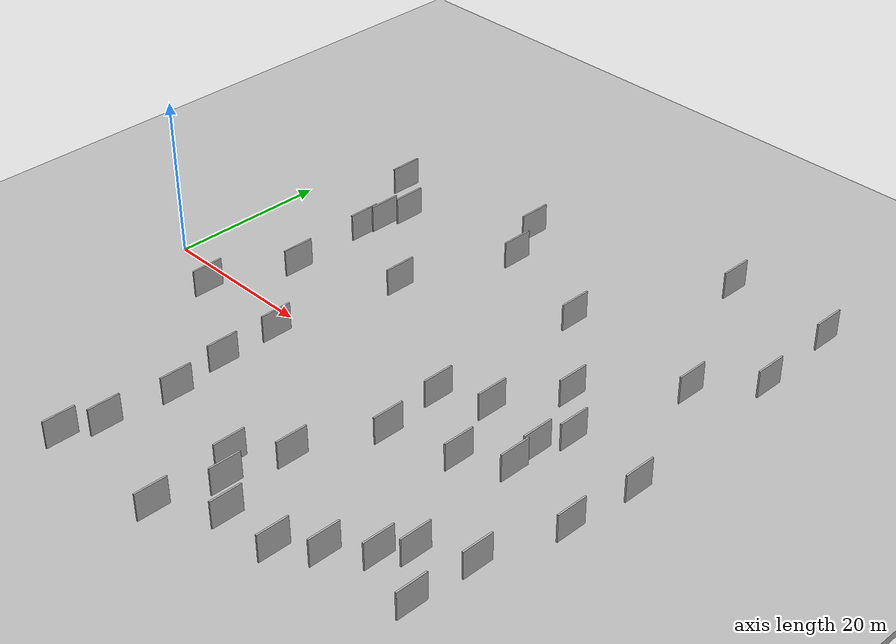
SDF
<?xml version="1.0" encoding="utf-8"?>

<sdf version="1.6">

   <world name="default">

      <gui fullscreen="0">

         <camera name="user_camera">

            <pose>-15 0 4.57585 0 0 0</pose>

            <view_controller>orbit</view_controller>

         </camera>

      </gui>

      <scene>

         <sky>

           <clouds>

             <speed>12</speed>

           </clouds>

         </sky>

         <ambient>0.4 0.4 0.4 1</ambient>

         <background>0.7 0.7 0.7 1</background>

         <shadows>1</shadows>

      </scene>

      <gravity>0 0 -9.8066</gravity>

      <magnetic_field>6e-06 2.3e-05 -4.2e-05</magnetic_field>

      <physics default="0" name="default_physics" type="ode">

         <ode>

            <solver>

               <type>quick</type>

               <iters>10</iters>

               <sor>1.0</sor>

               <use_dynamic_moi_rescaling>0</use_dynamic_moi_rescaling>

            </solver>

            <constraints>

               <cfm>0</cfm>

               <erp>0.2</erp>

               <contact_max_correcting_vel>100</contact_max_correcting_vel>

               <contact_surface_layer>0.001</contact_surface_layer>

            </constraints>

         </ode>

         <max_step_size>0.004</max_step_size>

         <real_time_factor>1</real_time_factor>

         <real_time_update_rate>250</real_time_update_rate>

      </physics>

      <light name="sun" type="directional">

         <cast_shadows>1</cast_shadows>

         <pose>0 0 10 0 0 0</pose>

         <diffuse>0.8 0.8 0.8 1</diffuse>

         <specular>0.2 0.2 0.2 1</specular>

         <attenuation>

            <range>1000</range>

            <constant>0.9</constant>

            <linear>0.01</linear>

            <quadratic>0.001</quadratic>

         </attenuation>

         <direction>-0.5 0.1 -0.9</direction>

      </light>

      <include>

         <name>ground_plane_1</name>

         <uri>model://HANNAS_ground_plane</uri>

         <pose>0 0 0  0 0 0</pose>

      </include>

      <include>

         <name>ground_plane_2</name>

         <uri>model://HANNAS_ground_plane</uri>

         <pose>100 0 0  0 0 0</pose>

      </include>

      <model name="HANNAS_wall_1">

         <static>1</static>

         <pose frame="">56.9369 2.0937 0.0 0.000000 0.000000 1.570796</pose>

         <link name="link">

            <pose frame="">0 0 2.00 0 0 0</pose>

            <collision name="collision">

               <geometry>

                  <box>

                     <size>4.00 0.2 4.00</size>

                  </box>

               </geometry>

               <max_contacts>10</max_contacts>

               <surface>

                  <contact>

                     <ode/>

                  </contact>

                  <bounce/>

                  <friction>

                     <torsional>

                        <ode/>

                     </torsional>

                     <ode/>

                  </friction>

               </surface>

            </collision>

            <visual name="visual">

               <cast_shadows>0</cast_shadows>

               <geometry>

                  <box>

                     <size>4.00 0.2 4.00</size>

                  </box>

               </geometry>

               <material>

                  <script>

                     <uri>model://HANNAS_wall/materials/scripts</uri>

                     <uri>model://HANNAS_wall/materials/textures</uri>

                     <name>vrc/HANNAS_wall</name>

                  </script>

               </material>

            </visual>

            <self_collide>0</self_collide>

            <enable_wind>0</enable_wind>

            <kinematic>0</kinematic>

         </link>

      </model>

      <model name="HANNAS_wall_2">

         <static>1</static>

         <pose frame="">9.5402 -3.6361 0.0 0.000000 0.000000 1.570796</pose>

         <link name="link">

            <pose frame="">0 0 2.00 0 0 0</pose>

            <collision name="collision">

               <geometry>

                  <box>

                     <size>4.00 0.2 4.00</size>

                  </box>

               </geometry>

               <max_contacts>10</max_contacts>

               <surface>

                  <contact>

                     <ode/>

                  </contact>

                  <bounce/>

                  <friction>

                     <torsional>

                        <ode/>

                     </torsional>

                     <ode/>

                  </friction>

               </surface>

            </collision>

            <visual name="visual">

               <cast_shadows>0</cast_shadows>

               <geometry>

                  <box>

                     <size>4.00 0.2 4.00</size>

                  </box>

               </geometry>

               <material>

                  <script>

                     <uri>model://HANNAS_wall/materials/scripts</uri>

                     <uri>model://HANNAS_wall/materials/textures</uri>

                     <name>vrc/HANNAS_wall</name>

                  </script>

               </material>

            </visual>

            <self_collide>0</self_collide>

            <enable_wind>0</enable_wind>

            <kinematic>0</kinematic>

         </link>

      </model>

      <model name="HANNAS_wall_3">

         <static>1</static>

         <pose frame="">67.4437 -4.2193 0.0 0.000000 0.000000 1.570796</pose>

         <link name="link">

            <pose frame="">0 0 2.00 0 0 0</pose>

            <collision name="collision">

               <geometry>

                  <box>

                     <size>4.00 0.2 4.00</size>

                  </box>

               </geometry>

               <max_contacts>10</max_contacts>

               <surface>

                  <contact>

                     <ode/>

                  </contact>

                  <bounce/>

                  <friction>

                     <torsional>

                        <ode/>

                     </torsional>

                     <ode/>

                  </friction>

               </surface>

            </collision>

            <visual name="visual">

               <cast_shadows>0</cast_shadows>

               <geometry>

                  <box>

                     <size>4.00 0.2 4.00</size>

                  </box>

               </geometry>

               <material>

                  <script>

                     <uri>model://HANNAS_wall/materials/scripts</uri>

                     <uri>model://HANNAS_wall/materials/textures</uri>

                     <name>vrc/HANNAS_wall</name>

                  </script>

               </material>

            </visual>

            <self_collide>0</self_collide>

            <enable_wind>0</enable_wind>

            <kinematic>0</kinematic>

         </link>

      </model>

      <model name="HANNAS_wall_4">

         <static>1</static>

         <pose frame="">13.6289 6.6572 0.0 0.000000 0.000000 1.570796</pose>

         <link name="link">

            <pose frame="">0 0 2.00 0 0 0</pose>

            <collision name="collision">

               <geometry>

                  <box>

                     <size>4.00 0.2 4.00</size>

                  </box>

               </geometry>

               <max_contacts>10</max_contacts>

               <surface>

                  <contact>

                     <ode/>

                  </contact>

                  <bounce/>

                  <friction>

                     <torsional>

                        <ode/>

                     </torsional>

                     <ode/>

                  </friction>

               </surface>

            </collision>

            <visual name="visual">

               <cast_shadows>0</cast_shadows>

               <geometry>

                  <box>

                     <size>4.00 0.2 4.00</size>

                  </box>

               </geometry>

               <material>

                  <script>

                     <uri>model://HANNAS_wall/materials/scripts</uri>

                     <uri>model://HANNAS_wall/materials/textures</uri>

                     <name>vrc/HANNAS_wall</name>

                  </script>

               </material>

            </visual>

            <self_collide>0</self_collide>

            <enable_wind>0</enable_wind>

            <kinematic>0</kinematic>

         </link>

      </model>

      <model name="HANNAS_wall_5">

         <static>1</static>

         <pose frame="">66.9574 27.7762 0.0 0.000000 0.000000 1.570796</pose>

         <link name="link">

            <pose frame="">0 0 2.00 0 0 0</pose>

            <collision name="collision">

               <geometry>

                  <box>

                     <size>4.00 0.2 4.00</size>

                  </box>

               </geometry>

               <max_contacts>10</max_contacts>

               <surface>

                  <contact>

                     <ode/>

                  </contact>

                  <bounce/>

                  <friction>

                     <torsional>

                        <ode/>

                     </torsional>

                     <ode/>

                  </friction>

               </surface>

            </collision>

            <visual name="visual">

               <cast_shadows>0</cast_shadows>

               <geometry>

                  <box>

                     <size>4.00 0.2 4.00</size>

                  </box>

               </geometry>

               <material>

                  <script>

                     <uri>model://HANNAS_wall/materials/scripts</uri>

                     <uri>model://HANNAS_wall/materials/textures</uri>

                     <name>vrc/HANNAS_wall</name>

                  </script>

               </material>

            </visual>

            <self_collide>0</self_collide>

            <enable_wind>0</enable_wind>

            <kinematic>0</kinematic>

         </link>

      </model>

      <model name="HANNAS_wall_6">

         <static>1</static>

         <pose frame="">8.7792 28.5940 0.0 0.000000 0.000000 1.570796</pose>

         <link name="link">

            <pose frame="">0 0 2.00 0 0 0</pose>

            <collision name="collision">

               <geometry>

                  <box>

                     <size>4.00 0.2 4.00</size>

                  </box>

               </geometry>

               <max_contacts>10</max_contacts>

               <surface>

                  <contact>

                     <ode/>

                  </contact>

                  <bounce/>

                  <friction>

                     <torsional>

                        <ode/>

                     </torsional>

                     <ode/>

                  </friction>

               </surface>

            </collision>

            <visual name="visual">

               <cast_shadows>0</cast_shadows>

               <geometry>

                  <box>

                     <size>4.00 0.2 4.00</size>

                  </box>

               </geometry>

               <material>

                  <script>

                     <uri>model://HANNAS_wall/materials/scripts</uri>

                     <uri>model://HANNAS_wall/materials/textures</uri>

                     <name>vrc/HANNAS_wall</name>

                  </script>

               </material>

            </visual>

            <self_collide>0</self_collide>

            <enable_wind>0</enable_wind>

            <kinematic>0</kinematic>

         </link>

      </model>

      <model name="HANNAS_wall_7">

         <static>1</static>

         <pose frame="">66.1612 39.3047 0.0 0.000000 0.000000 1.570796</pose>

         <link name="link">

            <pose frame="">0 0 2.00 0 0 0</pose>

            <collision name="collision">

               <geometry>

                  <box>

                     <size>4.00 0.2 4.00</size>

                  </box>

               </geometry>

               <max_contacts>10</max_contacts>

               <surface>

                  <contact>

                     <ode/>

                  </contact>

                  <bounce/>

                  <friction>

                     <torsional>

                        <ode/>

                     </torsional>

                     <ode/>

                  </friction>

               </surface>

            </collision>

            <visual name="visual">

               <cast_shadows>0</cast_shadows>

               <geometry>

                  <box>

                     <size>4.00 0.2 4.00</size>

                  </box>

               </geometry>

               <material>

                  <script>

                     <uri>model://HANNAS_wall/materials/scripts</uri>

                     <uri>model://HANNAS_wall/materials/textures</uri>

                     <name>vrc/HANNAS_wall</name>

                  </script>

               </material>

            </visual>

            <self_collide>0</self_collide>

            <enable_wind>0</enable_wind>

            <kinematic>0</kinematic>

         </link>

      </model>

      <model name="HANNAS_wall_8">

         <static>1</static>

         <pose frame="">57.3067 -20.1619 0.0 0.000000 0.000000 1.570796</pose>

         <link name="link">

            <pose frame="">0 0 2.00 0 0 0</pose>

            <collision name="collision">

               <geometry>

                  <box>

                     <size>4.00 0.2 4.00</size>

                  </box>

               </geometry>

               <max_contacts>10</max_contacts>

               <surface>

                  <contact>

                     <ode/>

                  </contact>

                  <bounce/>

                  <friction>

                     <torsional>

                        <ode/>

                     </torsional>

                     <ode/>

                  </friction>

               </surface>

            </collision>

            <visual name="visual">

               <cast_shadows>0</cast_shadows>

               <geometry>

                  <box>

                     <size>4.00 0.2 4.00</size>

                  </box>

               </geometry>

               <material>

                  <script>

                     <uri>model://HANNAS_wall/materials/scripts</uri>

                     <uri>model://HANNAS_wall/materials/textures</uri>

                     <name>vrc/HANNAS_wall</name>

                  </script>

               </material>

            </visual>

            <self_collide>0</self_collide>

            <enable_wind>0</enable_wind>

            <kinematic>0</kinematic>

         </link>

      </model>

      <model name="HANNAS_wall_9">

         <static>1</static>

         <pose frame="">20.8437 -31.5601 0.0 0.000000 0.000000 1.570796</pose>

         <link name="link">

            <pose frame="">0 0 2.00 0 0 0</pose>

            <collision name="collision">

               <geometry>

                  <box>

                     <size>4.00 0.2 4.00</size>

                  </box>

               </geometry>

               <max_contacts>10</max_contacts>

               <surface>

                  <contact>

                     <ode/>

                  </contact>

                  <bounce/>

                  <friction>

                     <torsional>

                        <ode/>

                     </torsional>

                     <ode/>

                  </friction>

               </surface>

            </collision>

            <visual name="visual">

               <cast_shadows>0</cast_shadows>

               <geometry>

                  <box>

                     <size>4.00 0.2 4.00</size>

                  </box>

               </geometry>

               <material>

                  <script>

                     <uri>model://HANNAS_wall/materials/scripts</uri>

                     <uri>model://HANNAS_wall/materials/textures</uri>

                     <name>vrc/HANNAS_wall</name>

                  </script>

               </material>

            </visual>

            <self_collide>0</self_collide>

            <enable_wind>0</enable_wind>

            <kinematic>0</kinematic>

         </link>

      </model>

      <model name="HANNAS_wall_10">

         <static>1</static>

         <pose frame="">22.4071 -27.0931 0.0 0.000000 0.000000 1.570796</pose>

         <link name="link">

            <pose frame="">0 0 2.00 0 0 0</pose>

            <collision name="collision">

               <geometry>

                  <box>

                     <size>4.00 0.2 4.00</size>

                  </box>

               </geometry>

               <max_contacts>10</max_contacts>

               <surface>

                  <contact>

                     <ode/>

                  </contact>

                  <bounce/>

                  <friction>

                     <torsional>

                        <ode/>

                     </torsional>

                     <ode/>

                  </friction>

               </surface>

            </collision>

            <visual name="visual">

               <cast_shadows>0</cast_shadows>

               <geometry>

                  <box>

                     <size>4.00 0.2 4.00</size>

                  </box>

               </geometry>

               <material>

                  <script>

                     <uri>model://HANNAS_wall/materials/scripts</uri>

                     <uri>model://HANNAS_wall/materials/textures</uri>

                     <name>vrc/HANNAS_wall</name>

                  </script>

               </material>

            </visual>

            <self_collide>0</self_collide>

            <enable_wind>0</enable_wind>

            <kinematic>0</kinematic>

         </link>

      </model>

      <model name="HANNAS_wall_11">

         <static>1</static>

         <pose frame="">52.2245 -4.5827 0.0 0.000000 0.000000 1.570796</pose>

         <link name="link">

            <pose frame="">0 0 2.00 0 0 0</pose>

            <collision name="collision">

               <geometry>

                  <box>

                     <size>4.00 0.2 4.00</size>

                  </box>

               </geometry>

               <max_contacts>10</max_contacts>

               <surface>

                  <contact>

                     <ode/>

                  </contact>

                  <bounce/>

                  <friction>

                     <torsional>

                        <ode/>

                     </torsional>

                     <ode/>

                  </friction>

               </surface>

            </collision>

            <visual name="visual">

               <cast_shadows>0</cast_shadows>

               <geometry>

                  <box>

                     <size>4.00 0.2 4.00</size>

                  </box>

               </geometry>

               <material>

                  <script>

                     <uri>model://HANNAS_wall/materials/scripts</uri>

                     <uri>model://HANNAS_wall/materials/textures</uri>

                     <name>vrc/HANNAS_wall</name>

                  </script>

               </material>

            </visual>

            <self_collide>0</self_collide>

            <enable_wind>0</enable_wind>

            <kinematic>0</kinematic>

         </link>

      </model>

      <model name="HANNAS_wall_12">

         <static>1</static>

         <pose frame="">52.6826 39.9335 0.0 0.000000 0.000000 1.570796</pose>

         <link name="link">

            <pose frame="">0 0 2.00 0 0 0</pose>

            <collision name="collision">

               <geometry>

                  <box>

                     <size>4.00 0.2 4.00</size>

                  </box>

               </geometry>

               <max_contacts>10</max_contacts>

               <surface>

                  <contact>

                     <ode/>

                  </contact>

                  <bounce/>

                  <friction>

                     <torsional>

                        <ode/>

                     </torsional>

                     <ode/>

                  </friction>

               </surface>

            </collision>

            <visual name="visual">

               <cast_shadows>0</cast_shadows>

               <geometry>

                  <box>

                     <size>4.00 0.2 4.00</size>

                  </box>

               </geometry>

               <material>

                  <script>

                     <uri>model://HANNAS_wall/materials/scripts</uri>

                     <uri>model://HANNAS_wall/materials/textures</uri>

                     <name>vrc/HANNAS_wall</name>

                  </script>

               </material>

            </visual>

            <self_collide>0</self_collide>

            <enable_wind>0</enable_wind>

            <kinematic>0</kinematic>

         </link>

      </model>

      <model name="HANNAS_wall_13">

         <static>1</static>

         <pose frame="">58.2556 6.1492 0.0 0.000000 0.000000 1.570796</pose>

         <link name="link">

            <pose frame="">0 0 2.00 0 0 0</pose>

            <collision name="collision">

               <geometry>

                  <box>

                     <size>4.00 0.2 4.00</size>

                  </box>

               </geometry>

               <max_contacts>10</max_contacts>

               <surface>

                  <contact>

                     <ode/>

                  </contact>

                  <bounce/>

                  <friction>

                     <torsional>

                        <ode/>

                     </torsional>

                     <ode/>

                  </friction>

               </surface>

            </collision>

            <visual name="visual">

               <cast_shadows>0</cast_shadows>

               <geometry>

                  <box>

                     <size>4.00 0.2 4.00</size>

                  </box>

               </geometry>

               <material>

                  <script>

                     <uri>model://HANNAS_wall/materials/scripts</uri>

                     <uri>model://HANNAS_wall/materials/textures</uri>

                     <name>vrc/HANNAS_wall</name>

                  </script>

               </material>

            </visual>

            <self_collide>0</self_collide>

            <enable_wind>0</enable_wind>

            <kinematic>0</kinematic>

         </link>

      </model>

      <model name="HANNAS_wall_14">

         <static>1</static>

         <pose frame="">36.0063 -21.3054 0.0 0.000000 0.000000 1.570796</pose>

         <link name="link">

            <pose frame="">0 0 2.00 0 0 0</pose>

            <collision name="collision">

               <geometry>

                  <box>

                     <size>4.00 0.2 4.00</size>

                  </box>

               </geometry>

               <max_contacts>10</max_contacts>

               <surface>

                  <contact>

                     <ode/>

                  </contact>

                  <bounce/>

                  <friction>

                     <torsional>

                        <ode/>

                     </torsional>

                     <ode/>

                  </friction>

               </surface>

            </collision>

            <visual name="visual">

               <cast_shadows>0</cast_shadows>

               <geometry>

                  <box>

                     <size>4.00 0.2 4.00</size>

                  </box>

               </geometry>

               <material>

                  <script>

                     <uri>model://HANNAS_wall/materials/scripts</uri>

                     <uri>model://HANNAS_wall/materials/textures</uri>

                     <name>vrc/HANNAS_wall</name>

                  </script>

               </material>

            </visual>

            <self_collide>0</self_collide>

            <enable_wind>0</enable_wind>

            <kinematic>0</kinematic>

         </link>

      </model>

      <model name="HANNAS_wall_15">

         <static>1</static>

         <pose frame="">13.2999 17.4530 0.0 0.000000 0.000000 1.570796</pose>

         <link name="link">

            <pose frame="">0 0 2.00 0 0 0</pose>

            <collision name="collision">

               <geometry>

                  <box>

                     <size>4.00 0.2 4.00</size>

                  </box>

               </geometry>

               <max_contacts>10</max_contacts>

               <surface>

                  <contact>

                     <ode/>

                  </contact>

                  <bounce/>

                  <friction>

                     <torsional>

                        <ode/>

                     </torsional>

                     <ode/>

                  </friction>

               </surface>

            </collision>

            <visual name="visual">

               <cast_shadows>0</cast_shadows>

               <geometry>

                  <box>

                     <size>4.00 0.2 4.00</size>

                  </box>

               </geometry>

               <material>

                  <script>

                     <uri>model://HANNAS_wall/materials/scripts</uri>

                     <uri>model://HANNAS_wall/materials/textures</uri>

                     <name>vrc/HANNAS_wall</name>

                  </script>

               </material>

            </visual>

            <self_collide>0</self_collide>

            <enable_wind>0</enable_wind>

            <kinematic>0</kinematic>

         </link>

      </model>

      <model name="HANNAS_wall_16">

         <static>1</static>

         <pose frame="">43.2379 1.1329 0.0 0.000000 0.000000 1.570796</pose>

         <link name="link">

            <pose frame="">0 0 2.00 0 0 0</pose>

            <collision name="collision">

               <geometry>

                  <box>

                     <size>4.00 0.2 4.00</size>

                  </box>

               </geometry>

               <max_contacts>10</max_contacts>

               <surface>

                  <contact>

                     <ode/>

                  </contact>

                  <bounce/>

                  <friction>

                     <torsional>

                        <ode/>

                     </torsional>

                     <ode/>

                  </friction>

               </surface>

            </collision>

            <visual name="visual">

               <cast_shadows>0</cast_shadows>

               <geometry>

                  <box>

                     <size>4.00 0.2 4.00</size>

                  </box>

               </geometry>

               <material>

                  <script>

                     <uri>model://HANNAS_wall/materials/scripts</uri>

                     <uri>model://HANNAS_wall/materials/textures</uri>

                     <name>vrc/HANNAS_wall</name>

                  </script>

               </material>

            </visual>

            <self_collide>0</self_collide>

            <enable_wind>0</enable_wind>

            <kinematic>0</kinematic>

         </link>

      </model>

      <model name="HANNAS_wall_17">

         <static>1</static>

         <pose frame="">59.3844 -17.3063 0.0 0.000000 0.000000 1.570796</pose>

         <link name="link">

            <pose frame="">0 0 2.00 0 0 0</pose>

            <collision name="collision">

               <geometry>

                  <box>

                     <size>4.00 0.2 4.00</size>

                  </box>

               </geometry>

               <max_contacts>10</max_contacts>

               <surface>

                  <contact>

                     <ode/>

                  </contact>

                  <bounce/>

                  <friction>

                     <torsional>

                        <ode/>

                     </torsional>

                     <ode/>

                  </friction>

               </surface>

            </collision>

            <visual name="visual">

               <cast_shadows>0</cast_shadows>

               <geometry>

                  <box>

                     <size>4.00 0.2 4.00</size>

                  </box>

               </geometry>

               <material>

                  <script>

                     <uri>model://HANNAS_wall/materials/scripts</uri>

                     <uri>model://HANNAS_wall/materials/textures</uri>

                     <name>vrc/HANNAS_wall</name>

                  </script>

               </material>

            </visual>

            <self_collide>0</self_collide>

            <enable_wind>0</enable_wind>

            <kinematic>0</kinematic>

         </link>

      </model>

      <model name="HANNAS_wall_18">

         <static>1</static>

         <pose frame="">36.5653 -31.4506 0.0 0.000000 0.000000 1.570796</pose>

         <link name="link">

            <pose frame="">0 0 2.00 0 0 0</pose>

            <collision name="collision">

               <geometry>

                  <box>

                     <size>4.00 0.2 4.00</size>

                  </box>

               </geometry>

               <max_contacts>10</max_contacts>

               <surface>

                  <contact>

                     <ode/>

                  </contact>

                  <bounce/>

                  <friction>

                     <torsional>

                        <ode/>

                     </torsional>

                     <ode/>

                  </friction>

               </surface>

            </collision>

            <visual name="visual">

               <cast_shadows>0</cast_shadows>

               <geometry>

                  <box>

                     <size>4.00 0.2 4.00</size>

                  </box>

               </geometry>

               <material>

                  <script>

                     <uri>model://HANNAS_wall/materials/scripts</uri>

                     <uri>model://HANNAS_wall/materials/textures</uri>

                     <name>vrc/HANNAS_wall</name>

                  </script>

               </material>

            </visual>

            <self_collide>0</self_collide>

            <enable_wind>0</enable_wind>

            <kinematic>0</kinematic>

         </link>

      </model>

      <model name="HANNAS_wall_19">

         <static>1</static>

         <pose frame="">24.9704 12.5374 0.0 0.000000 0.000000 1.570796</pose>

         <link name="link">

            <pose frame="">0 0 2.00 0 0 0</pose>

            <collision name="collision">

               <geometry>

                  <box>

                     <size>4.00 0.2 4.00</size>

                  </box>

               </geometry>

               <max_contacts>10</max_contacts>

               <surface>

                  <contact>

                     <ode/>

                  </contact>

                  <bounce/>

                  <friction>

                     <torsional>

                        <ode/>

                     </torsional>

                     <ode/>

                  </friction>

               </surface>

            </collision>

            <visual name="visual">

               <cast_shadows>0</cast_shadows>

               <geometry>

                  <box>

                     <size>4.00 0.2 4.00</size>

                  </box>

               </geometry>

               <material>

                  <script>

                     <uri>model://HANNAS_wall/materials/scripts</uri>

                     <uri>model://HANNAS_wall/materials/textures</uri>

                     <name>vrc/HANNAS_wall</name>

                  </script>

               </material>

            </visual>

            <self_collide>0</self_collide>

            <enable_wind>0</enable_wind>

            <kinematic>0</kinematic>

         </link>

      </model>

      <model name="HANNAS_wall_20">

         <static>1</static>

         <pose frame="">61.7439 20.9682 0.0 0.000000 0.000000 1.570796</pose>

         <link name="link">

            <pose frame="">0 0 2.00 0 0 0</pose>

            <collision name="collision">

               <geometry>

                  <box>

                     <size>4.00 0.2 4.00</size>

                  </box>

               </geometry>

               <max_contacts>10</max_contacts>

               <surface>

                  <contact>

                     <ode/>

                  </contact>

                  <bounce/>

                  <friction>

                     <torsional>

                        <ode/>

                     </torsional>

                     <ode/>

                  </friction>

               </surface>

            </collision>

            <visual name="visual">

               <cast_shadows>0</cast_shadows>

               <geometry>

                  <box>

                     <size>4.00 0.2 4.00</size>

                  </box>

               </geometry>

               <material>

                  <script>

                     <uri>model://HANNAS_wall/materials/scripts</uri>

                     <uri>model://HANNAS_wall/materials/textures</uri>

                     <name>vrc/HANNAS_wall</name>

                  </script>

               </material>

            </visual>

            <self_collide>0</self_collide>

            <enable_wind>0</enable_wind>

            <kinematic>0</kinematic>

         </link>

      </model>

      <model name="HANNAS_wall_21">

         <static>1</static>

         <pose frame="">57.3942 -1.7343 0.0 0.000000 0.000000 1.570796</pose>

         <link name="link">

            <pose frame="">0 0 2.00 0 0 0</pose>

            <collision name="collision">

               <geometry>

                  <box>

                     <size>4.00 0.2 4.00</size>

                  </box>

               </geometry>

               <max_contacts>10</max_contacts>

               <surface>

                  <contact>

                     <ode/>

                  </contact>

                  <bounce/>

                  <friction>

                     <torsional>

                        <ode/>

                     </torsional>

                     <ode/>

                  </friction>

               </surface>

            </collision>

            <visual name="visual">

               <cast_shadows>0</cast_shadows>

               <geometry>

                  <box>

                     <size>4.00 0.2 4.00</size>

                  </box>

               </geometry>

               <material>

                  <script>

                     <uri>model://HANNAS_wall/materials/scripts</uri>

                     <uri>model://HANNAS_wall/materials/textures</uri>

                     <name>vrc/HANNAS_wall</name>

                  </script>

               </material>

            </visual>

            <self_collide>0</self_collide>

            <enable_wind>0</enable_wind>

            <kinematic>0</kinematic>

         </link>

      </model>

      <model name="HANNAS_wall_22">

         <static>1</static>

         <pose frame="">22.0836 -3.7233 0.0 0.000000 0.000000 1.570796</pose>

         <link name="link">

            <pose frame="">0 0 2.00 0 0 0</pose>

            <collision name="collision">

               <geometry>

                  <box>

                     <size>4.00 0.2 4.00</size>

                  </box>

               </geometry>

               <max_contacts>10</max_contacts>

               <surface>

                  <contact>

                     <ode/>

                  </contact>

                  <bounce/>

                  <friction>

                     <torsional>

                        <ode/>

                     </torsional>

                     <ode/>

                  </friction>

               </surface>

            </collision>

            <visual name="visual">

               <cast_shadows>0</cast_shadows>

               <geometry>

                  <box>

                     <size>4.00 0.2 4.00</size>

                  </box>

               </geometry>

               <material>

                  <script>

                     <uri>model://HANNAS_wall/materials/scripts</uri>

                     <uri>model://HANNAS_wall/materials/textures</uri>

                     <name>vrc/HANNAS_wall</name>

                  </script>

               </material>

            </visual>

            <self_collide>0</self_collide>

            <enable_wind>0</enable_wind>

            <kinematic>0</kinematic>

         </link>

      </model>

      <model name="HANNAS_wall_23">

         <static>1</static>

         <pose frame="">22.2518 -11.4094 0.0 0.000000 0.000000 1.570796</pose>

         <link name="link">

            <pose frame="">0 0 2.00 0 0 0</pose>

            <collision name="collision">

               <geometry>

                  <box>

                     <size>4.00 0.2 4.00</size>

                  </box>

               </geometry>

               <max_contacts>10</max_contacts>

               <surface>

                  <contact>

                     <ode/>

                  </contact>

                  <bounce/>

                  <friction>

                     <torsional>

                        <ode/>

                     </torsional>

                     <ode/>

                  </friction>

               </surface>

            </collision>

            <visual name="visual">

               <cast_shadows>0</cast_shadows>

               <geometry>

                  <box>

                     <size>4.00 0.2 4.00</size>

                  </box>

               </geometry>

               <material>

                  <script>

                     <uri>model://HANNAS_wall/materials/scripts</uri>

                     <uri>model://HANNAS_wall/materials/textures</uri>

                     <name>vrc/HANNAS_wall</name>

                  </script>

               </material>

            </visual>

            <self_collide>0</self_collide>

            <enable_wind>0</enable_wind>

            <kinematic>0</kinematic>

         </link>

      </model>

      <model name="HANNAS_wall_24">

         <static>1</static>

         <pose frame="">44.0785 -6.8377 0.0 0.000000 0.000000 1.570796</pose>

         <link name="link">

            <pose frame="">0 0 2.00 0 0 0</pose>

            <collision name="collision">

               <geometry>

                  <box>

                     <size>4.00 0.2 4.00</size>

                  </box>

               </geometry>

               <max_contacts>10</max_contacts>

               <surface>

                  <contact>

                     <ode/>

                  </contact>

                  <bounce/>

                  <friction>

                     <torsional>

                        <ode/>

                     </torsional>

                     <ode/>

                  </friction>

               </surface>

            </collision>

            <visual name="visual">

               <cast_shadows>0</cast_shadows>

               <geometry>

                  <box>

                     <size>4.00 0.2 4.00</size>

                  </box>

               </geometry>

               <material>

                  <script>

                     <uri>model://HANNAS_wall/materials/scripts</uri>

                     <uri>model://HANNAS_wall/materials/textures</uri>

                     <name>vrc/HANNAS_wall</name>

                  </script>

               </material>

            </visual>

            <self_collide>0</self_collide>

            <enable_wind>0</enable_wind>

            <kinematic>0</kinematic>

         </link>

      </model>

      <model name="HANNAS_wall_25">

         <static>1</static>

         <pose frame="">64.7324 -14.3137 0.0 0.000000 0.000000 1.570796</pose>

         <link name="link">

            <pose frame="">0 0 2.00 0 0 0</pose>

            <collision name="collision">

               <geometry>

                  <box>

                     <size>4.00 0.2 4.00</size>

                  </box>

               </geometry>

               <max_contacts>10</max_contacts>

               <surface>

                  <contact>

                     <ode/>

                  </contact>

                  <bounce/>

                  <friction>

                     <torsional>

                        <ode/>

                     </torsional>

                     <ode/>

                  </friction>

               </surface>

            </collision>

            <visual name="visual">

               <cast_shadows>0</cast_shadows>

               <geometry>

                  <box>

                     <size>4.00 0.2 4.00</size>

                  </box>

               </geometry>

               <material>

                  <script>

                     <uri>model://HANNAS_wall/materials/scripts</uri>

                     <uri>model://HANNAS_wall/materials/textures</uri>

                     <name>vrc/HANNAS_wall</name>

                  </script>

               </material>

            </visual>

            <self_collide>0</self_collide>

            <enable_wind>0</enable_wind>

            <kinematic>0</kinematic>

         </link>

      </model>

      <model name="HANNAS_wall_26">

         <static>1</static>

         <pose frame="">53.3178 -23.5683 0.0 0.000000 0.000000 1.570796</pose>

         <link name="link">

            <pose frame="">0 0 2.00 0 0 0</pose>

            <collision name="collision">

               <geometry>

                  <box>

                     <size>4.00 0.2 4.00</size>

                  </box>

               </geometry>

               <max_contacts>10</max_contacts>

               <surface>

                  <contact>

                     <ode/>

                  </contact>

                  <bounce/>

                  <friction>

                     <torsional>

                        <ode/>

                     </torsional>

                     <ode/>

                  </friction>

               </surface>

            </collision>

            <visual name="visual">

               <cast_shadows>0</cast_shadows>

               <geometry>

                  <box>

                     <size>4.00 0.2 4.00</size>

                  </box>

               </geometry>

               <material>

                  <script>

                     <uri>model://HANNAS_wall/materials/scripts</uri>

                     <uri>model://HANNAS_wall/materials/textures</uri>

                     <name>vrc/HANNAS_wall</name>

                  </script>

               </material>

            </visual>

            <self_collide>0</self_collide>

            <enable_wind>0</enable_wind>

            <kinematic>0</kinematic>

         </link>

      </model>

      <model name="HANNAS_wall_27">

         <static>1</static>

         <pose frame="">23.3453 -18.5073 0.0 0.000000 0.000000 1.570796</pose>

         <link name="link">

            <pose frame="">0 0 2.00 0 0 0</pose>

            <collision name="collision">

               <geometry>

                  <box>

                     <size>4.00 0.2 4.00</size>

                  </box>

               </geometry>

               <max_contacts>10</max_contacts>

               <surface>

                  <contact>

                     <ode/>

                  </contact>

                  <bounce/>

                  <friction>

                     <torsional>

                        <ode/>

                     </torsional>

                     <ode/>

                  </friction>

               </surface>

            </collision>

            <visual name="visual">

               <cast_shadows>0</cast_shadows>

               <geometry>

                  <box>

                     <size>4.00 0.2 4.00</size>

                  </box>

               </geometry>

               <material>

                  <script>

                     <uri>model://HANNAS_wall/materials/scripts</uri>

                     <uri>model://HANNAS_wall/materials/textures</uri>

                     <name>vrc/HANNAS_wall</name>

                  </script>

               </material>

            </visual>

            <self_collide>0</self_collide>

            <enable_wind>0</enable_wind>

            <kinematic>0</kinematic>

         </link>

      </model>

      <model name="HANNAS_wall_28">

         <static>1</static>

         <pose frame="">49.4405 -26.6519 0.0 0.000000 0.000000 1.570796</pose>

         <link name="link">

            <pose frame="">0 0 2.00 0 0 0</pose>

            <collision name="collision">

               <geometry>

                  <box>

                     <size>4.00 0.2 4.00</size>

                  </box>

               </geometry>

               <max_contacts>10</max_contacts>

               <surface>

                  <contact>

                     <ode/>

                  </contact>

                  <bounce/>

                  <friction>

                     <torsional>

                        <ode/>

                     </torsional>

                     <ode/>

                  </friction>

               </surface>

            </collision>

            <visual name="visual">

               <cast_shadows>0</cast_shadows>

               <geometry>

                  <box>

                     <size>4.00 0.2 4.00</size>

                  </box>

               </geometry>

               <material>

                  <script>

                     <uri>model://HANNAS_wall/materials/scripts</uri>

                     <uri>model://HANNAS_wall/materials/textures</uri>

                     <name>vrc/HANNAS_wall</name>

                  </script>

               </material>

            </visual>

            <self_collide>0</self_collide>

            <enable_wind>0</enable_wind>

            <kinematic>0</kinematic>

         </link>

      </model>

      <model name="HANNAS_wall_29">

         <static>1</static>

         <pose frame="">38.6146 -23.8953 0.0 0.000000 0.000000 1.570796</pose>

         <link name="link">

            <pose frame="">0 0 2.00 0 0 0</pose>

            <collision name="collision">

               <geometry>

                  <box>

                     <size>4.00 0.2 4.00</size>

                  </box>

               </geometry>

               <max_contacts>10</max_contacts>

               <surface>

                  <contact>

                     <ode/>

                  </contact>

                  <bounce/>

                  <friction>

                     <torsional>

                        <ode/>

                     </torsional>

                     <ode/>

                  </friction>

               </surface>

            </collision>

            <visual name="visual">

               <cast_shadows>0</cast_shadows>

               <geometry>

                  <box>

                     <size>4.00 0.2 4.00</size>

                  </box>

               </geometry>

               <material>

                  <script>

                     <uri>model://HANNAS_wall/materials/scripts</uri>

                     <uri>model://HANNAS_wall/materials/textures</uri>

                     <name>vrc/HANNAS_wall</name>

                  </script>

               </material>

            </visual>

            <self_collide>0</self_collide>

            <enable_wind>0</enable_wind>

            <kinematic>0</kinematic>

         </link>

      </model>

      <model name="HANNAS_wall_30">

         <static>1</static>

         <pose frame="">13.5304 20.5556 0.0 0.000000 0.000000 1.570796</pose>

         <link name="link">

            <pose frame="">0 0 2.00 0 0 0</pose>

            <collision name="collision">

               <geometry>

                  <box>

                     <size>4.00 0.2 4.00</size>

                  </box>

               </geometry>

               <max_contacts>10</max_contacts>

               <surface>

                  <contact>

                     <ode/>

                  </contact>

                  <bounce/>

                  <friction>

                     <torsional>

                        <ode/>

                     </torsional>

                     <ode/>

                  </friction>

               </surface>

            </collision>

            <visual name="visual">

               <cast_shadows>0</cast_shadows>

               <geometry>

                  <box>

                     <size>4.00 0.2 4.00</size>

                  </box>

               </geometry>

               <material>

                  <script>

                     <uri>model://HANNAS_wall/materials/scripts</uri>

                     <uri>model://HANNAS_wall/materials/textures</uri>

                     <name>vrc/HANNAS_wall</name>

                  </script>

               </material>

            </visual>

            <self_collide>0</self_collide>

            <enable_wind>0</enable_wind>

            <kinematic>0</kinematic>

         </link>

      </model>

      <model name="HANNAS_wall_31">

         <static>1</static>

         <pose frame="">64.2878 -22.4194 0.0 0.000000 0.000000 1.570796</pose>

         <link name="link">

            <pose frame="">0 0 2.00 0 0 0</pose>

            <collision name="collision">

               <geometry>

                  <box>

                     <size>4.00 0.2 4.00</size>

                  </box>

               </geometry>

               <max_contacts>10</max_contacts>

               <surface>

                  <contact>

                     <ode/>

                  </contact>

                  <bounce/>

                  <friction>

                     <torsional>

                        <ode/>

                     </torsional>

                     <ode/>

                  </friction>

               </surface>

            </collision>

            <visual name="visual">

               <cast_shadows>0</cast_shadows>

               <geometry>

                  <box>

                     <size>4.00 0.2 4.00</size>

                  </box>

               </geometry>

               <material>

                  <script>

                     <uri>model://HANNAS_wall/materials/scripts</uri>

                     <uri>model://HANNAS_wall/materials/textures</uri>

                     <name>vrc/HANNAS_wall</name>

                  </script>

               </material>

            </visual>

            <self_collide>0</self_collide>

            <enable_wind>0</enable_wind>

            <kinematic>0</kinematic>

         </link>

      </model>

      <model name="HANNAS_wall_32">

         <static>1</static>

         <pose frame="">14.3028 23.9347 0.0 0.000000 0.000000 1.570796</pose>

         <link name="link">

            <pose frame="">0 0 2.00 0 0 0</pose>

            <collision name="collision">

               <geometry>

                  <box>

                     <size>4.00 0.2 4.00</size>

                  </box>

               </geometry>

               <max_contacts>10</max_contacts>

               <surface>

                  <contact>

                     <ode/>

                  </contact>

                  <bounce/>

                  <friction>

                     <torsional>

                        <ode/>

                     </torsional>

                     <ode/>

                  </friction>

               </surface>

            </collision>

            <visual name="visual">

               <cast_shadows>0</cast_shadows>

               <geometry>

                  <box>

                     <size>4.00 0.2 4.00</size>

                  </box>

               </geometry>

               <material>

                  <script>

                     <uri>model://HANNAS_wall/materials/scripts</uri>

                     <uri>model://HANNAS_wall/materials/textures</uri>

                     <name>vrc/HANNAS_wall</name>

                  </script>

               </material>

            </visual>

            <self_collide>0</self_collide>

            <enable_wind>0</enable_wind>

            <kinematic>0</kinematic>

         </link>

      </model>

      <model name="HANNAS_wall_33">

         <static>1</static>

         <pose frame="">43.9641 21.8795 0.0 0.000000 0.000000 1.570796</pose>

         <link name="link">

            <pose frame="">0 0 2.00 0 0 0</pose>

            <collision name="collision">

               <geometry>

                  <box>

                     <size>4.00 0.2 4.00</size>

                  </box>

               </geometry>

               <max_contacts>10</max_contacts>

               <surface>

                  <contact>

                     <ode/>

                  </contact>

                  <bounce/>

                  <friction>

                     <torsional>

                        <ode/>

                     </torsional>

                     <ode/>

                  </friction>

               </surface>

            </collision>

            <visual name="visual">

               <cast_shadows>0</cast_shadows>

               <geometry>

                  <box>

                     <size>4.00 0.2 4.00</size>

                  </box>

               </geometry>

               <material>

                  <script>

                     <uri>model://HANNAS_wall/materials/scripts</uri>

                     <uri>model://HANNAS_wall/materials/textures</uri>

                     <name>vrc/HANNAS_wall</name>

                  </script>

               </material>

            </visual>

            <self_collide>0</self_collide>

            <enable_wind>0</enable_wind>

            <kinematic>0</kinematic>

         </link>

      </model>

      <model name="HANNAS_wall_34">

         <static>1</static>

         <pose frame="">40.1112 -16.5106 0.0 0.000000 0.000000 1.570796</pose>

         <link name="link">

            <pose frame="">0 0 2.00 0 0 0</pose>

            <collision name="collision">

               <geometry>

                  <box>

                     <size>4.00 0.2 4.00</size>

                  </box>

               </geometry>

               <max_contacts>10</max_contacts>

               <surface>

                  <contact>

                     <ode/>

                  </contact>

                  <bounce/>

                  <friction>

                     <torsional>

                        <ode/>

                     </torsional>

                     <ode/>

                  </friction>

               </surface>

            </collision>

            <visual name="visual">

               <cast_shadows>0</cast_shadows>

               <geometry>

                  <box>

                     <size>4.00 0.2 4.00</size>

                  </box>

               </geometry>

               <material>

                  <script>

                     <uri>model://HANNAS_wall/materials/scripts</uri>

                     <uri>model://HANNAS_wall/materials/textures</uri>

                     <name>vrc/HANNAS_wall</name>

                  </script>

               </material>

            </visual>

            <self_collide>0</self_collide>

            <enable_wind>0</enable_wind>

            <kinematic>0</kinematic>

         </link>

      </model>

      <model name="HANNAS_wall_35">

         <static>1</static>

         <pose frame="">42.5704 -26.9034 0.0 0.000000 0.000000 1.570796</pose>

         <link name="link">

            <pose frame="">0 0 2.00 0 0 0</pose>

            <collision name="collision">

               <geometry>

                  <box>

                     <size>4.00 0.2 4.00</size>

                  </box>

               </geometry>

               <max_contacts>10</max_contacts>

               <surface>

                  <contact>

                     <ode/>

                  </contact>

                  <bounce/>

                  <friction>

                     <torsional>

                        <ode/>

                     </torsional>

                     <ode/>

                  </friction>

               </surface>

            </collision>

            <visual name="visual">

               <cast_shadows>0</cast_shadows>

               <geometry>

                  <box>

                     <size>4.00 0.2 4.00</size>

                  </box>

               </geometry>

               <material>

                  <script>

                     <uri>model://HANNAS_wall/materials/scripts</uri>

                     <uri>model://HANNAS_wall/materials/textures</uri>

                     <name>vrc/HANNAS_wall</name>

                  </script>

               </material>

            </visual>

            <self_collide>0</self_collide>

            <enable_wind>0</enable_wind>

            <kinematic>0</kinematic>

         </link>

      </model>

      <model name="HANNAS_wall_36">

         <static>1</static>

         <pose frame="">27.8859 32.1582 0.0 0.000000 0.000000 1.570796</pose>

         <link name="link">

            <pose frame="">0 0 2.00 0 0 0</pose>

            <collision name="collision">

               <geometry>

                  <box>

                     <size>4.00 0.2 4.00</size>

                  </box>

               </geometry>

               <max_contacts>10</max_contacts>

               <surface>

                  <contact>

                     <ode/>

                  </contact>

                  <bounce/>

                  <friction>

                     <torsional>

                        <ode/>

                     </torsional>

                     <ode/>

                  </friction>

               </surface>

            </collision>

            <visual name="visual">

               <cast_shadows>0</cast_shadows>

               <geometry>

                  <box>

                     <size>4.00 0.2 4.00</size>

                  </box>

               </geometry>

               <material>

                  <script>

                     <uri>model://HANNAS_wall/materials/scripts</uri>

                     <uri>model://HANNAS_wall/materials/textures</uri>

                     <name>vrc/HANNAS_wall</name>

                  </script>

               </material>

            </visual>

            <self_collide>0</self_collide>

            <enable_wind>0</enable_wind>

            <kinematic>0</kinematic>

         </link>

      </model>

      <model name="HANNAS_wall_37">

         <static>1</static>

         <pose frame="">30.5004 26.4084 0.0 0.000000 0.000000 1.570796</pose>

         <link name="link">

            <pose frame="">0 0 2.00 0 0 0</pose>

            <collision name="collision">

               <geometry>

                  <box>

                     <size>4.00 0.2 4.00</size>

                  </box>

               </geometry>

               <max_contacts>10</max_contacts>

               <surface>

                  <contact>

                     <ode/>

                  </contact>

                  <bounce/>

                  <friction>

                     <torsional>

                        <ode/>

                     </torsional>

                     <ode/>

                  </friction>

               </surface>

            </collision>

            <visual name="visual">

               <cast_shadows>0</cast_shadows>

               <geometry>

                  <box>

                     <size>4.00 0.2 4.00</size>

                  </box>

               </geometry>

               <material>

                  <script>

                     <uri>model://HANNAS_wall/materials/scripts</uri>

                     <uri>model://HANNAS_wall/materials/textures</uri>

                     <name>vrc/HANNAS_wall</name>

                  </script>

               </material>

            </visual>

            <self_collide>0</self_collide>

            <enable_wind>0</enable_wind>

            <kinematic>0</kinematic>

         </link>

      </model>

      <model name="HANNAS_wall_38">

         <static>1</static>

         <pose frame="">68.2202 4.8838 0.0 0.000000 0.000000 1.570796</pose>

         <link name="link">

            <pose frame="">0 0 2.00 0 0 0</pose>

            <collision name="collision">

               <geometry>

                  <box>

                     <size>4.00 0.2 4.00</size>

                  </box>

               </geometry>

               <max_contacts>10</max_contacts>

               <surface>

                  <contact>

                     <ode/>

                  </contact>

                  <bounce/>

                  <friction>

                     <torsional>

                        <ode/>

                     </torsional>

                     <ode/>

                  </friction>

               </surface>

            </collision>

            <visual name="visual">

               <cast_shadows>0</cast_shadows>

               <geometry>

                  <box>

                     <size>4.00 0.2 4.00</size>

                  </box>

               </geometry>

               <material>

                  <script>

                     <uri>model://HANNAS_wall/materials/scripts</uri>

                     <uri>model://HANNAS_wall/materials/textures</uri>

                     <name>vrc/HANNAS_wall</name>

                  </script>

               </material>

            </visual>

            <self_collide>0</self_collide>

            <enable_wind>0</enable_wind>

            <kinematic>0</kinematic>

         </link>

      </model>

      <model name="HANNAS_wall_39">

         <static>1</static>

         <pose frame="">48.8170 3.6627 0.0 0.000000 0.000000 1.570796</pose>

         <link name="link">

            <pose frame="">0 0 2.00 0 0 0</pose>

            <collision name="collision">

               <geometry>

                  <box>

                     <size>4.00 0.2 4.00</size>

                  </box>

               </geometry>

               <max_contacts>10</max_contacts>

               <surface>

                  <contact>

                     <ode/>

                  </contact>

                  <bounce/>

                  <friction>

                     <torsional>

                        <ode/>

                     </torsional>

                     <ode/>

                  </friction>

               </surface>

            </collision>

            <visual name="visual">

               <cast_shadows>0</cast_shadows>

               <geometry>

                  <box>

                     <size>4.00 0.2 4.00</size>

                  </box>

               </geometry>

               <material>

                  <script>

                     <uri>model://HANNAS_wall/materials/scripts</uri>

                     <uri>model://HANNAS_wall/materials/textures</uri>

                     <name>vrc/HANNAS_wall</name>

                  </script>

               </material>

            </visual>

            <self_collide>0</self_collide>

            <enable_wind>0</enable_wind>

            <kinematic>0</kinematic>

         </link>

      </model>

      <model name="HANNAS_wall_40">

         <static>1</static>

         <pose frame="">53.1889 11.4684 0.0 0.000000 0.000000 1.570796</pose>

         <link name="link">

            <pose frame="">0 0 2.00 0 0 0</pose>

            <collision name="collision">

               <geometry>

                  <box>

                     <size>4.00 0.2 4.00</size>

                  </box>

               </geometry>

               <max_contacts>10</max_contacts>

               <surface>

                  <contact>

                     <ode/>

                  </contact>

                  <bounce/>

                  <friction>

                     <torsional>

                        <ode/>

                     </torsional>

                     <ode/>

                  </friction>

               </surface>

            </collision>

            <visual name="visual">

               <cast_shadows>0</cast_shadows>

               <geometry>

                  <box>

                     <size>4.00 0.2 4.00</size>

                  </box>

               </geometry>

               <material>

                  <script>

                     <uri>model://HANNAS_wall/materials/scripts</uri>

                     <uri>model://HANNAS_wall/materials/textures</uri>

                     <name>vrc/HANNAS_wall</name>

                  </script>

               </material>

            </visual>

            <self_collide>0</self_collide>

            <enable_wind>0</enable_wind>

            <kinematic>0</kinematic>

         </link>

      </model>

   </world>

</sdf>
